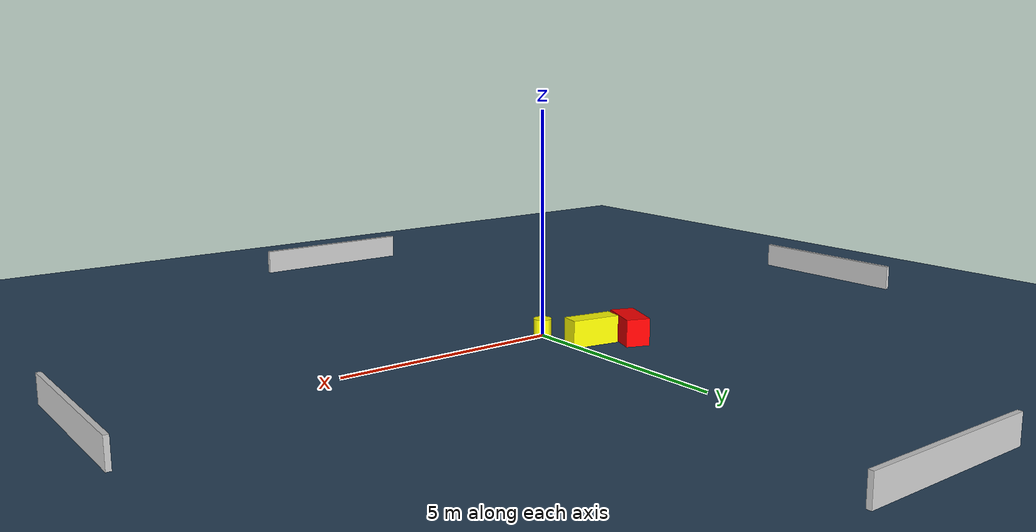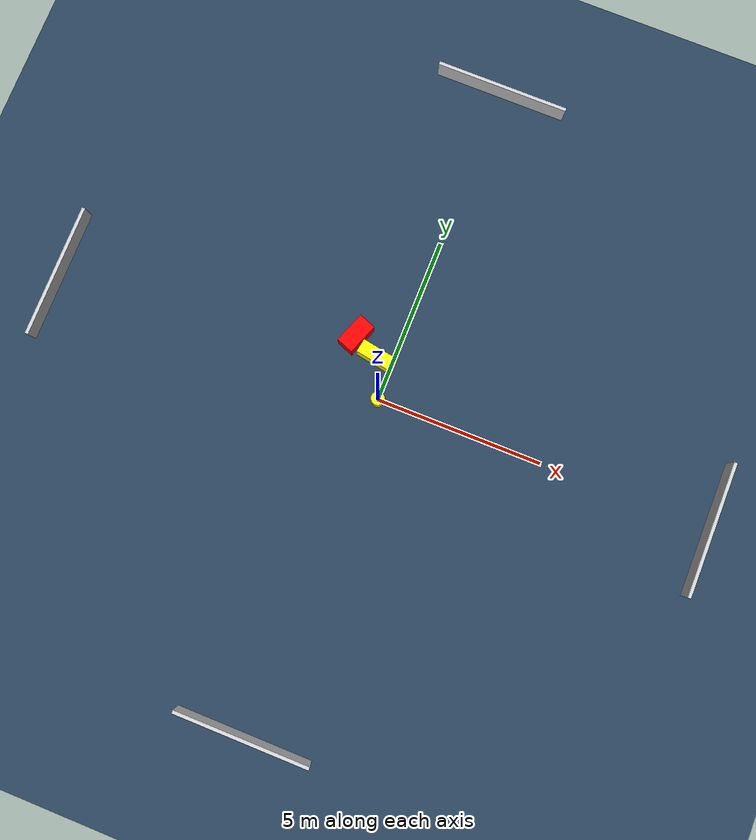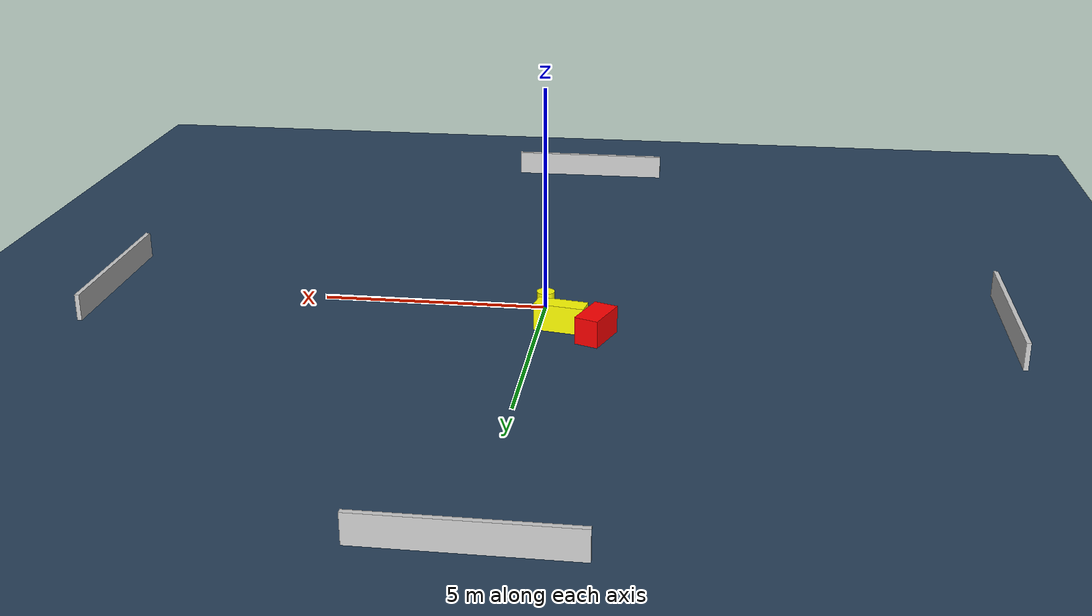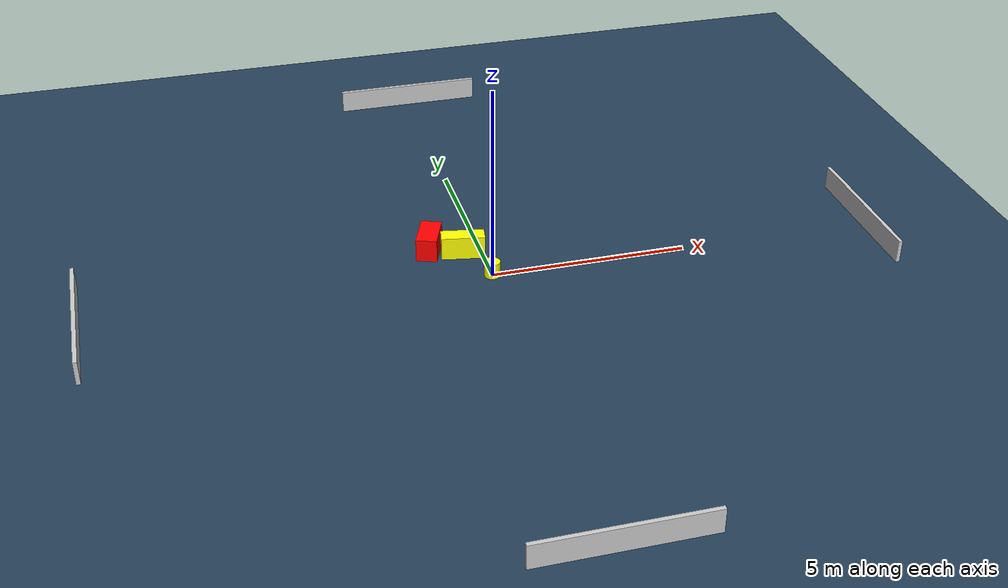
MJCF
<?xml version="1.0" ?>
<mujoco model="generated_environment">
  <option timestep="0.01" integrator="RK4" cone="elliptic"/>
  <default>
    <geom density="1"/>
  </default>
  <asset>
    <texture builtin="gradient" height="3072" name="skybox" rgb1="0.3 0.5 0.7" rgb2="0 0 0" type="skybox" width="512"/>
    <texture builtin="checker" height="300" name="groundplane" rgb1="0.2 0.3 0.4" rgb2="0.1 0.2 0.3" type="2d" width="300"/>
    <material name="groundplane" reflectance="0.2" texrepeat="5 5" texture="groundplane"/>
  </asset>
  <worldbody>
    <light dir="0 0 -1" directional="true" pos="0 0 1.5"/>
    <geom condim="3" friction="0.5 0.005 0.001" material="groundplane" name="floor" pos="0 0 0" size="0 0 0.05" type="plane"/>
    <body name="walls">
      <geom name="wall_1" condim="4" pos="-10.0 0.0 0.3" rgba="0.800000011920929 0.800000011920929 0.800000011920929 1.0" size="0.05 2.0 0.3" type="box"/>
      <geom name="wall_2" condim="4" pos="10.0 0.0 0.3" rgba="0.800000011920929 0.800000011920929 0.800000011920929 1.0" size="0.05 2.0 0.3" type="box"/>
      <geom name="wall_3" condim="4" pos="0.0 -10.0 0.3" rgba="0.800000011920929 0.800000011920929 0.800000011920929 1.0" size="2.0 0.05 0.3" type="box"/>
      <geom name="wall_4" condim="4" pos="0.0 10.0 0.3" rgba="0.800000011920929 0.800000011920929 0.800000011920929 1.0" size="2.0 0.05 0.3" type="box"/>
    </body>
    <body name="robot">
      <joint name="joint_x" type="slide" pos="0 0 0" axis="1 0 0"/>
      <joint name="joint_y" type="slide" pos="0 0 0" axis="0 1 0"/>
      <geom name="robot" type="cylinder" pos="0.0 0.0 0.2" size="0.2 0.2 0.0" mass="5.0" friction="1.0 0.005 0.0001" condim="4" rgba="1.0 1.0 0.0 1.0"/>
    </body>
    <body name="obstacle_1_movable">
      <geom name="obstacle_1_movable" condim="4" pos="-0.47195484768065116 1.120325231806051 0.3" euler="0 0 170.0640080353223" friction="0.0 0.005 0.001" rgba="1.0 1.0 0.0 1.0" size="0.5508526384613162 0.204325847676892 0.3" type="box" mass="0.1"/>
      <joint type="free"/>
    </body>
    <body name="obstacle_2_static">
      <geom name="obstacle_2_static" condim="4" pos="-1.2615755502830306 1.487807415836323 0.3" euler="0 0 249.30366899518611" friction="0.0 0.005 0.001" rgba="1.0 0.0 0.0 1.0" size="0.48699605614320807 0.2661773366294841 0.3" type="box"/>
    </body>
  </worldbody>
  <actuator>
    <motor name="actuator_x" joint="joint_x" gear="1" ctrlrange="-1 1"/>
    <motor name="actuator_y" joint="joint_y" gear="1" ctrlrange="-1 1"/>
  </actuator>
</mujoco>
